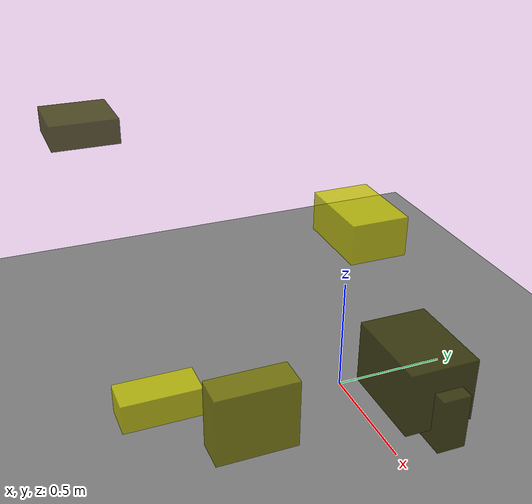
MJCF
<?xml version="1.0"?>
<mujoco model="obstacle_scene">
  <compiler angle="radian" coordinate="local"/>
  <option timestep="0.001" gravity="0 0 -9.81"/>

  <asset>
    <material name="obstacle_mat" rgba="0.8 0.8 0.0 0.8"/>
    <material name="ground_mat" rgba="0.5 0.5 0.5 1"/>
  </asset>

  <worldbody>
    <!-- Ground plane -->
    <geom name="ground" type="plane" size="3 3 0.1" material="ground_mat"/>

    <!-- Obstacles -->
    <body name="obstacle_0" pos="-0.863727 -0.878212 1.019329">
      <geom name="obs_0" type="box" size="0.145814 0.147587 0.054600" rgba="0.2 0.2 0.0 0.8"/>
    </body>
    <body name="obstacle_1" pos="-0.586450 0.380163 0.465768">
      <geom name="obs_1" type="box" size="0.152357 0.170861 0.054508" rgba="0.5 0.5 0.0 0.8"/>
    </body>
    <body name="obstacle_2" pos="0.028839 -0.824169 0.162030">
      <geom name="obs_2" type="box" size="0.076599 0.167062 0.064858" rgba="0.8 0.8 0.0 0.8"/>
    </body>
    <body name="obstacle_3" pos="0.657646 -0.069057 0.532325">
      <geom name="obs_3" type="box" size="0.171171 0.126057 0.120890" rgba="0.2 0.2 0.0 0.8"/>
    </body>
    <body name="obstacle_4" pos="0.578890 -0.639594 0.450187">
      <geom name="obs_4" type="box" size="0.060417 0.151091 0.134511" rgba="0.5 0.5 0.0 0.8"/>
    </body>
    <body name="obstacle_5" pos="-0.392825 0.264275 0.559326">
      <geom name="obs_5" type="box" size="0.196193 0.133766 0.093208" rgba="0.8 0.8 0.0 0.8"/>
    </body>
    <body name="obstacle_6" pos="0.763623 -0.047398 0.457045">
      <geom name="obs_6" type="box" size="0.118626 0.052191 0.104285" rgba="0.2 0.2 0.0 0.8"/>
    </body>
  </worldbody>
</mujoco>
